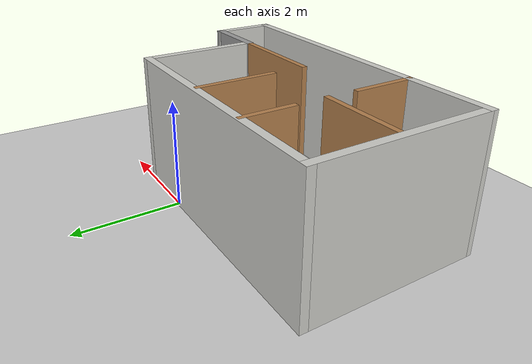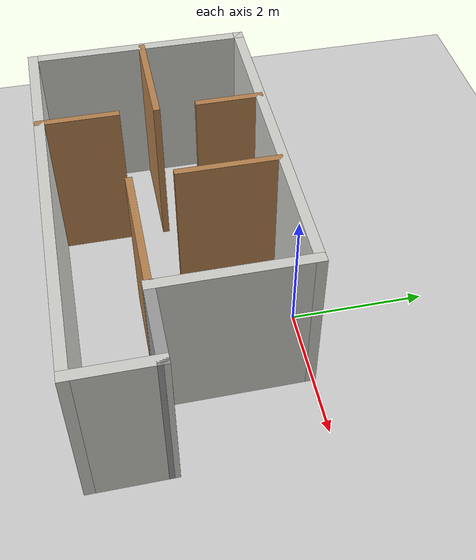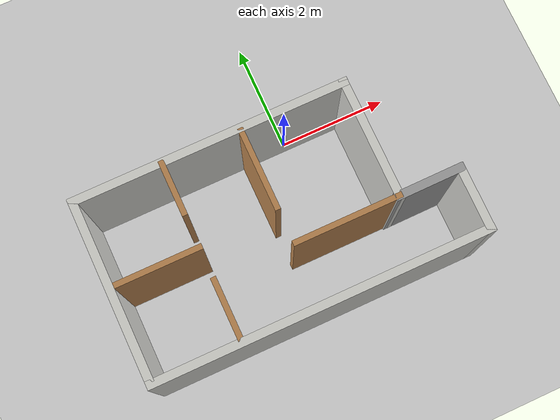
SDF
<sdf version="1.6">
 <world name="default">
  <light name="sun" type="directional">
   <pose>0 0 10 0 -0 0</pose>
   <diffuse>0.8 0.8 0.8 1</diffuse>
   <specular>0.2 0.2 0.2 1</specular>
   <attenuation>
    <range>1000</range>
    <constant>0.9</constant>
    <linear>0.01</linear>
    <quadratic>0.001</quadratic>
   </attenuation>
   <direction>-0.5 0.1 -0.9</direction>
  </light>
  <model name="ground_plane">
   <static>1</static>
   <link name="link">
    <collision name="collision">
     <geometry><plane><normal>0 0 1</normal><size>100 100</size></plane></geometry>
     <surface>
      <contact><collide_bitmask>65535</collide_bitmask></contact>
      <friction><ode><mu>100</mu><mu2>50</mu2></ode></friction>
     </surface>
    </collision>
    <visual name="visual">
     <cast_shadows>0</cast_shadows>
     <geometry><plane><normal>0 0 1</normal><size>100 100</size></plane></geometry>
     <material>
      <script><uri>file://media/materials/scripts/gazebo.material</uri><name>Gazebo/Grey</name></script>
     </material>
    </visual>
   </link>
  </model>
  <gravity>0 0 -9.8</gravity>
  <magnetic_field>6e-06 2.3e-05 -4.2e-05</magnetic_field>
  <atmosphere type="adiabatic"/>
  <physics name="default_physics" default="0" type="ode">
   <max_step_size>0.001</max_step_size>
   <real_time_factor>1</real_time_factor>
   <real_time_update_rate>1000</real_time_update_rate>
  </physics>
  <scene><ambient>0.4 0.4 0.4 1</ambient><background>0.7 0.7 0.7 1</background><shadows>1</shadows></scene>
  <audio><device>default</device></audio>
  <spherical_coordinates>
   <surface_model>EARTH_WGS84</surface_model>
   <latitude_deg>0</latitude_deg>
   <longitude_deg>0</longitude_deg>
   <elevation>0</elevation>
   <heading_deg>0</heading_deg>
  </spherical_coordinates>
  <model name="test">
   <pose>-0.804833 -1.64 0 0 -0 0</pose>
   <link name="Wall_0">
    <collision name="Wall_0_Collision">
     <geometry><box><size>6.1 0.15 2.5</size></box></geometry>
     <pose>0 0 1.25 0 -0 0</pose>
    </collision>
    <visual name="Wall_0_Visual">
     <pose>0 0 1.25 0 -0 0</pose>
     <geometry><box><size>6.1 0.15 2.5</size></box></geometry>
     <material>
      <script><uri>file://media/materials/scripts/gazebo.material</uri><name>Gazebo/CeilingTiled</name></script>
      <ambient>1 1 1 1</ambient>
     </material>
     <meta><layer>0</layer></meta>
    </visual>
    <pose>-0.000167 -1.6 0 0 -0 0</pose>
   </link>
   <link name="Wall_1">
    <collision name="Wall_1_Collision">
     <geometry><box><size>1.25 0.15 2.5</size></box></geometry>
     <pose>0 0 1.25 0 -0 0</pose>
    </collision>
    <visual name="Wall_1_Visual">
     <pose>0 0 1.25 0 -0 0</pose>
     <geometry><box><size>1.25 0.15 2.5</size></box></geometry>
     <material>
      <script><uri>file://media/materials/scripts/gazebo.material</uri><name>Gazebo/CeilingTiled</name></script>
      <ambient>1 1 1 1</ambient>
     </material>
     <meta><layer>0</layer></meta>
    </visual>
    <pose>2.97483 -1.05 0 0 -0 1.5708</pose>
   </link>
   <link name="Wall_10">
    <collision name="Wall_10_Collision">
     <geometry><box><size>1.66 0.1 2.5</size></box></geometry>
     <pose>0 0 1.25 0 -0 0</pose>
    </collision>
    <visual name="Wall_10_Visual">
     <pose>0 0 1.25 0 -0 0</pose>
     <geometry><box><size>1.66 0.1 2.5</size></box></geometry>
     <material>
      <script><uri>file://media/materials/scripts/gazebo.material</uri><name>Gazebo/Wood</name></script>
      <ambient>1 1 1 1</ambient>
     </material>
     <meta><layer>0</layer></meta>
    </visual>
    <pose>-2.18717 0.067 0 0 -0 0</pose>
   </link>
   <link name="Wall_12">
    <collision name="Wall_12_Collision">
     <geometry><box><size>1 0.1 2.5</size></box></geometry>
     <pose>0 0 1.25 0 -0 0</pose>
    </collision>
    <visual name="Wall_12_Visual">
     <pose>0 0 1.25 0 -0 0</pose>
     <geometry><box><size>1 0.1 2.5</size></box></geometry>
     <material>
      <script><uri>file://media/materials/scripts/gazebo.material</uri><name>Gazebo/Wood</name></script>
      <ambient>1 1 1 1</ambient>
     </material>
     <meta><layer>0</layer></meta>
    </visual>
    <pose>-1.40717 1.137 0 0 -0 -1.5708</pose>
   </link>
   <link name="Wall_14">
    <collision name="Wall_14_Collision">
     <geometry><box><size>1.95 0.1 2.5</size></box></geometry>
     <pose>0 0 1.25 0 -0 0</pose>
    </collision>
    <visual name="Wall_14_Visual">
     <pose>0 0 1.25 0 -0 0</pose>
     <geometry><box><size>1.95 0.1 2.5</size></box></geometry>
     <material>
      <script><uri>file://media/materials/scripts/gazebo.material</uri><name>Gazebo/Wood</name></script>
      <ambient>1 1 1 1</ambient>
     </material>
     <meta><layer>0</layer></meta>
    </visual>
    <pose>0.949833 -0.505 0 0 -0 3.14159</pose>
   </link>
   <link name="Wall_16">
    <collision name="Wall_16_Collision">
     <geometry><box><size>1.5 0.1 2.5</size></box></geometry>
     <pose>0 0 1.25 0 -0 0</pose>
    </collision>
    <visual name="Wall_16_Visual">
     <pose>0 0 1.25 0 -0 0</pose>
     <geometry><box><size>1.5 0.1 2.5</size></box></geometry>
     <material>
      <script><uri>file://media/materials/scripts/gazebo.material</uri><name>Gazebo/Wood</name></script>
      <ambient>1 1 1 1</ambient>
     </material>
     <meta><layer>0</layer></meta>
    </visual>
    <pose>-0.007167 0.847 0 0 -0 -1.5708</pose>
   </link>
   <link name="Wall_18">
    <collision name="Wall_18_Collision">
     <geometry><box><size>1.20005 0.1 2.5</size></box></geometry>
     <pose>0 0 1.25 0 -0 0</pose>
    </collision>
    <visual name="Wall_18_Visual">
     <pose>0 0 1.25 0 -0 0</pose>
     <geometry><box><size>1.20005 0.1 2.5</size></box></geometry>
     <material>
      <script><uri>file://media/materials/scripts/gazebo.material</uri><name>Gazebo/Wood</name></script>
      <ambient>1 1 1 1</ambient>
     </material>
     <meta><layer>0</layer></meta>
    </visual>
    <pose>-1.40717 -1.063 0 0 -0 1.5708</pose>
   </link>
   <link name="Wall_2">
    <collision name="Wall_2_Collision">
     <geometry><box><size>1.25 0.15 2.5</size></box></geometry>
     <pose>0 0 1.25 0 -0 0</pose>
    </collision>
    <visual name="Wall_2_Visual">
     <pose>0 0 1.25 0 -0 0</pose>
     <geometry><box><size>1.25 0.15 2.5</size></box></geometry>
     <material>
      <script><uri>file://media/materials/scripts/gazebo.material</uri><name>Gazebo/Grey</name></script>
      <ambient>1 1 1 1</ambient>
     </material>
     <meta><layer>0</layer></meta>
    </visual>
    <pose>2.42483 -0.5025 0 0 -0 -3.13705</pose>
   </link>
   <link name="Wall_4">
    <collision name="Wall_4_Collision">
     <geometry><box><size>2.255 0.15 2.5</size></box></geometry>
     <pose>0 0 1.25 0 -0 0</pose>
    </collision>
    <visual name="Wall_4_Visual">
     <pose>0 0 1.25 0 -0 0</pose>
     <geometry><box><size>2.255 0.15 2.5</size></box></geometry>
     <material>
      <script><uri>file://media/materials/scripts/gazebo.material</uri><name>Gazebo/CeilingTiled</name></script>
      <ambient>1 1 1 1</ambient>
     </material>
     <meta><layer>0</layer></meta>
    </visual>
    <pose>1.87483 0.5475 0 0 -0 1.5708</pose>
   </link>
   <link name="Wall_5">
    <collision name="Wall_5_Collision">
     <geometry><box><size>5 0.15 2.5</size></box></geometry>
     <pose>0 0 1.25 0 -0 0</pose>
    </collision>
    <visual name="Wall_5_Visual">
     <pose>0 0 1.25 0 -0 0</pose>
     <geometry><box><size>5 0.15 2.5</size></box></geometry>
     <material>
      <script><uri>file://media/materials/scripts/gazebo.material</uri><name>Gazebo/CeilingTiled</name></script>
      <ambient>1 1 1 1</ambient>
     </material>
     <meta><layer>0</layer></meta>
    </visual>
    <pose>-0.550167 1.6 0 0 -0 3.14159</pose>
   </link>
   <link name="Wall_6">
    <collision name="Wall_6_Collision">
     <geometry><box><size>3.25 0.15 2.5</size></box></geometry>
     <pose>0 0 1.25 0 -0 0</pose>
    </collision>
    <visual name="Wall_6_Visual">
     <pose>0 0 1.25 0 -0 0</pose>
     <geometry><box><size>3.25 0.15 2.5</size></box></geometry>
     <material>
      <script><uri>file://media/materials/scripts/gazebo.material</uri><name>Gazebo/CeilingTiled</name></script>
      <ambient>1 1 1 1</ambient>
     </material>
     <meta><layer>0</layer></meta>
    </visual>
    <pose>-2.97517 0.05 0 0 -0 -1.5708</pose>
   </link>
   <static>1</static>
  </model>
 </world>
</sdf>
